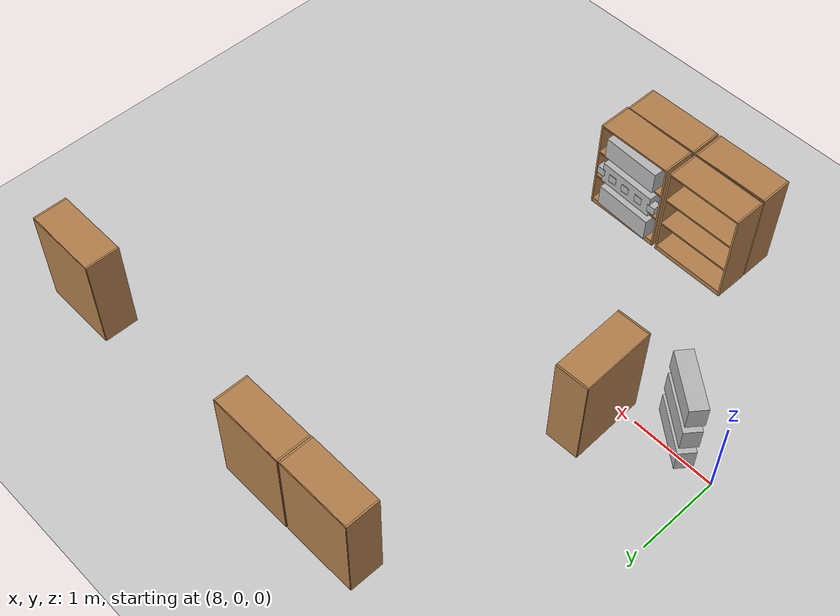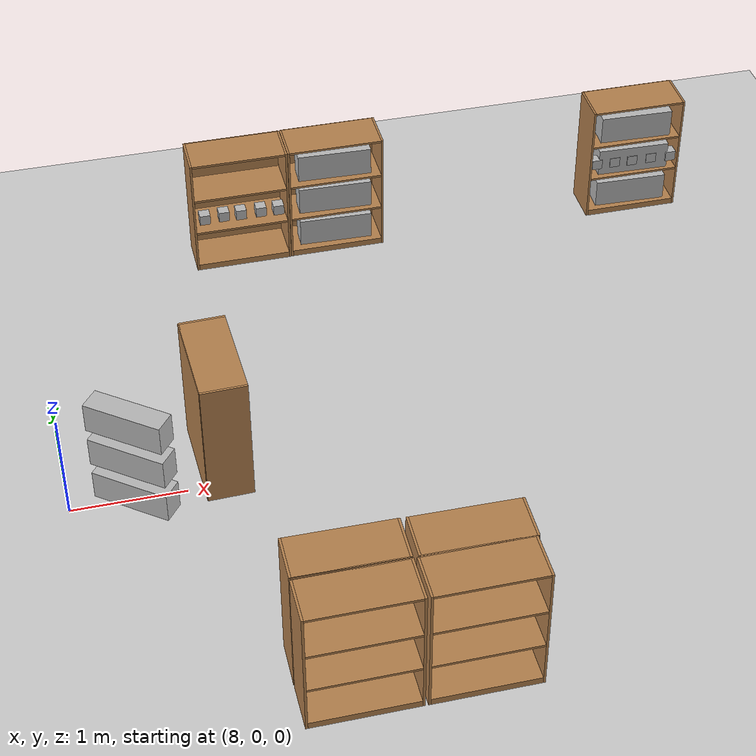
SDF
<sdf version="1.7">
 <world name="default">
  <model name="ground_plane">
   <static>1</static>
   <link name="link">
    <collision name="collision">
     <geometry><plane><normal>0 0 1</normal><size>100 100</size></plane></geometry>
     <surface><friction><ode><mu>100</mu><mu2>50</mu2></ode></friction></surface>
    </collision>
    <visual name="visual">
     <cast_shadows>0</cast_shadows>
     <geometry><plane><normal>0 0 1</normal><size>100 100</size></plane></geometry>
     <material>
      <script><uri>file://media/materials/scripts/gazebo.material</uri><name>Gazebo/Grey</name></script>
     </material>
    </visual>
   </link>
  </model>
  <model name="bookshelf_clone_0">
   <static>1</static>
   <link name="link">
    <inertial><mass>1</mass></inertial>
    <collision name="back">
     <pose>0 0.005 0.6 0 -0 0</pose>
     <geometry><box><size>0.9 0.01 1.2</size></box></geometry>
    </collision>
    <visual name="visual1">
     <pose>0 0.005 0.6 0 -0 0</pose>
     <geometry><box><size>0.9 0.01 1.2</size></box></geometry>
     <material>
      <script><uri>file://media/materials/scripts/gazebo.material</uri><name>Gazebo/Wood</name></script>
     </material>
    </visual>
    <collision name="left_side">
     <pose>0.45 -0.195 0.6 0 -0 0</pose>
     <geometry><box><size>0.02 0.4 1.2</size></box></geometry>
    </collision>
    <visual name="visual2">
     <pose>0.45 -0.195 0.6 0 -0 0</pose>
     <geometry><box><size>0.02 0.4 1.2</size></box></geometry>
     <material>
      <script><uri>file://media/materials/scripts/gazebo.material</uri><name>Gazebo/Wood</name></script>
     </material>
    </visual>
    <collision name="right_side">
     <pose>-0.45 -0.195 0.6 0 -0 0</pose>
     <geometry><box><size>0.02 0.4 1.2</size></box></geometry>
    </collision>
    <visual name="visual3">
     <pose>-0.45 -0.195 0.6 0 -0 0</pose>
     <geometry><box><size>0.02 0.4 1.2</size></box></geometry>
     <material>
      <script><uri>file://media/materials/scripts/gazebo.material</uri><name>Gazebo/Wood</name></script>
     </material>
    </visual>
    <collision name="bottom">
     <pose>0 -0.195 0.03 0 -0 0</pose>
     <geometry><box><size>0.88 0.4 0.06</size></box></geometry>
    </collision>
    <visual name="visual4">
     <pose>0 -0.195 0.03 0 -0 0</pose>
     <geometry><box><size>0.88 0.4 0.06</size></box></geometry>
     <material>
      <script><uri>file://media/materials/scripts/gazebo.material</uri><name>Gazebo/Wood</name></script>
     </material>
    </visual>
    <collision name="top">
     <pose>0 -0.195 1.19 0 -0 0</pose>
     <geometry><box><size>0.88 0.4 0.02</size></box></geometry>
    </collision>
    <visual name="visual5">
     <pose>0 -0.195 1.19 0 -0 0</pose>
     <geometry><box><size>0.88 0.4 0.02</size></box></geometry>
     <material>
      <script><uri>file://media/materials/scripts/gazebo.material</uri><name>Gazebo/Wood</name></script>
     </material>
    </visual>
    <collision name="low_shelf">
     <pose>0 -0.195 0.43 0 -0 0</pose>
     <geometry><box><size>0.88 0.4 0.02</size></box></geometry>
    </collision>
    <visual name="visual6">
     <pose>0 -0.195 0.43 0 -0 0</pose>
     <geometry><box><size>0.88 0.4 0.02</size></box></geometry>
     <material>
      <script><uri>file://media/materials/scripts/gazebo.material</uri><name>Gazebo/Wood</name></script>
     </material>
    </visual>
    <collision name="high_shelf">
     <pose>0 -0.195 0.8 0 -0 0</pose>
     <geometry><box><size>0.88 0.4 0.02</size></box></geometry>
    </collision>
    <visual name="visual7">
     <pose>0 -0.195 0.8 0 -0 0</pose>
     <geometry><box><size>0.88 0.4 0.02</size></box></geometry>
     <material>
      <script><uri>file://media/materials/scripts/gazebo.material</uri><name>Gazebo/Wood</name></script>
     </material>
    </visual>
   </link>
   <pose>10.0302 3.32854 0.012624 0 -0 0</pose>
  </model>
  <model name="bookshelf_clone_0_clone">
   <static>1</static>
   <link name="link">
    <inertial><mass>1</mass></inertial>
    <collision name="back">
     <pose>0 0.005 0.6 0 -0 0</pose>
     <geometry><box><size>0.9 0.01 1.2</size></box></geometry>
    </collision>
    <visual name="visual1">
     <pose>0 0.005 0.6 0 -0 0</pose>
     <geometry><box><size>0.9 0.01 1.2</size></box></geometry>
     <material>
      <script><uri>file://media/materials/scripts/gazebo.material</uri><name>Gazebo/Wood</name></script>
     </material>
    </visual>
    <collision name="left_side">
     <pose>0.45 -0.195 0.6 0 -0 0</pose>
     <geometry><box><size>0.02 0.4 1.2</size></box></geometry>
    </collision>
    <visual name="visual2">
     <pose>0.45 -0.195 0.6 0 -0 0</pose>
     <geometry><box><size>0.02 0.4 1.2</size></box></geometry>
     <material>
      <script><uri>file://media/materials/scripts/gazebo.material</uri><name>Gazebo/Wood</name></script>
     </material>
    </visual>
    <collision name="right_side">
     <pose>-0.45 -0.195 0.6 0 -0 0</pose>
     <geometry><box><size>0.02 0.4 1.2</size></box></geometry>
    </collision>
    <visual name="visual3">
     <pose>-0.45 -0.195 0.6 0 -0 0</pose>
     <geometry><box><size>0.02 0.4 1.2</size></box></geometry>
     <material>
      <script><uri>file://media/materials/scripts/gazebo.material</uri><name>Gazebo/Wood</name></script>
     </material>
    </visual>
    <collision name="bottom">
     <pose>0 -0.195 0.03 0 -0 0</pose>
     <geometry><box><size>0.88 0.4 0.06</size></box></geometry>
    </collision>
    <visual name="visual4">
     <pose>0 -0.195 0.03 0 -0 0</pose>
     <geometry><box><size>0.88 0.4 0.06</size></box></geometry>
     <material>
      <script><uri>file://media/materials/scripts/gazebo.material</uri><name>Gazebo/Wood</name></script>
     </material>
    </visual>
    <collision name="top">
     <pose>0 -0.195 1.19 0 -0 0</pose>
     <geometry><box><size>0.88 0.4 0.02</size></box></geometry>
    </collision>
    <visual name="visual5">
     <pose>0 -0.195 1.19 0 -0 0</pose>
     <geometry><box><size>0.88 0.4 0.02</size></box></geometry>
     <material>
      <script><uri>file://media/materials/scripts/gazebo.material</uri><name>Gazebo/Wood</name></script>
     </material>
    </visual>
    <collision name="low_shelf">
     <pose>0 -0.195 0.43 0 -0 0</pose>
     <geometry><box><size>0.88 0.4 0.02</size></box></geometry>
    </collision>
    <visual name="visual6">
     <pose>0 -0.195 0.43 0 -0 0</pose>
     <geometry><box><size>0.88 0.4 0.02</size></box></geometry>
     <material>
      <script><uri>file://media/materials/scripts/gazebo.material</uri><name>Gazebo/Wood</name></script>
     </material>
    </visual>
    <collision name="high_shelf">
     <pose>0 -0.195 0.8 0 -0 0</pose>
     <geometry><box><size>0.88 0.4 0.02</size></box></geometry>
    </collision>
    <visual name="visual7">
     <pose>0 -0.195 0.8 0 -0 0</pose>
     <geometry><box><size>0.88 0.4 0.02</size></box></geometry>
     <material>
      <script><uri>file://media/materials/scripts/gazebo.material</uri><name>Gazebo/Wood</name></script>
     </material>
    </visual>
   </link>
   <pose>10.9525 3.33337 0.012624 0 -0 0</pose>
  </model>
  <model name="bookshelf_clone_0_clone_0">
   <static>1</static>
   <link name="link">
    <inertial><mass>1</mass></inertial>
    <collision name="back">
     <pose>0 0.005 0.6 0 -0 0</pose>
     <geometry><box><size>0.9 0.01 1.2</size></box></geometry>
    </collision>
    <visual name="visual1">
     <pose>0 0.005 0.6 0 -0 0</pose>
     <geometry><box><size>0.9 0.01 1.2</size></box></geometry>
     <material>
      <script><uri>file://media/materials/scripts/gazebo.material</uri><name>Gazebo/Wood</name></script>
     </material>
    </visual>
    <collision name="left_side">
     <pose>0.45 -0.195 0.6 0 -0 0</pose>
     <geometry><box><size>0.02 0.4 1.2</size></box></geometry>
    </collision>
    <visual name="visual2">
     <pose>0.45 -0.195 0.6 0 -0 0</pose>
     <geometry><box><size>0.02 0.4 1.2</size></box></geometry>
     <material>
      <script><uri>file://media/materials/scripts/gazebo.material</uri><name>Gazebo/Wood</name></script>
     </material>
    </visual>
    <collision name="right_side">
     <pose>-0.45 -0.195 0.6 0 -0 0</pose>
     <geometry><box><size>0.02 0.4 1.2</size></box></geometry>
    </collision>
    <visual name="visual3">
     <pose>-0.45 -0.195 0.6 0 -0 0</pose>
     <geometry><box><size>0.02 0.4 1.2</size></box></geometry>
     <material>
      <script><uri>file://media/materials/scripts/gazebo.material</uri><name>Gazebo/Wood</name></script>
     </material>
    </visual>
    <collision name="bottom">
     <pose>0 -0.195 0.03 0 -0 0</pose>
     <geometry><box><size>0.88 0.4 0.06</size></box></geometry>
    </collision>
    <visual name="visual4">
     <pose>0 -0.195 0.03 0 -0 0</pose>
     <geometry><box><size>0.88 0.4 0.06</size></box></geometry>
     <material>
      <script><uri>file://media/materials/scripts/gazebo.material</uri><name>Gazebo/Wood</name></script>
     </material>
    </visual>
    <collision name="top">
     <pose>0 -0.195 1.19 0 -0 0</pose>
     <geometry><box><size>0.88 0.4 0.02</size></box></geometry>
    </collision>
    <visual name="visual5">
     <pose>0 -0.195 1.19 0 -0 0</pose>
     <geometry><box><size>0.88 0.4 0.02</size></box></geometry>
     <material>
      <script><uri>file://media/materials/scripts/gazebo.material</uri><name>Gazebo/Wood</name></script>
     </material>
    </visual>
    <collision name="low_shelf">
     <pose>0 -0.195 0.43 0 -0 0</pose>
     <geometry><box><size>0.88 0.4 0.02</size></box></geometry>
    </collision>
    <visual name="visual6">
     <pose>0 -0.195 0.43 0 -0 0</pose>
     <geometry><box><size>0.88 0.4 0.02</size></box></geometry>
     <material>
      <script><uri>file://media/materials/scripts/gazebo.material</uri><name>Gazebo/Wood</name></script>
     </material>
    </visual>
    <collision name="high_shelf">
     <pose>0 -0.195 0.8 0 -0 0</pose>
     <geometry><box><size>0.88 0.4 0.02</size></box></geometry>
    </collision>
    <visual name="visual7">
     <pose>0 -0.195 0.8 0 -0 0</pose>
     <geometry><box><size>0.88 0.4 0.02</size></box></geometry>
     <material>
      <script><uri>file://media/materials/scripts/gazebo.material</uri><name>Gazebo/Wood</name></script>
     </material>
    </visual>
   </link>
   <pose>13.9438 3.28168 0.012624 0 -0 0</pose>
  </model>
  <model name="bookshelf_clone_0_clone_1">
   <static>1</static>
   <link name="link">
    <inertial><mass>1</mass></inertial>
    <collision name="back">
     <pose>0 0.005 0.6 0 -0 0</pose>
     <geometry><box><size>0.9 0.01 1.2</size></box></geometry>
    </collision>
    <visual name="visual1">
     <pose>0 0.005 0.6 0 -0 0</pose>
     <geometry><box><size>0.9 0.01 1.2</size></box></geometry>
     <material>
      <script><uri>file://media/materials/scripts/gazebo.material</uri><name>Gazebo/Wood</name></script>
     </material>
    </visual>
    <collision name="left_side">
     <pose>0.45 -0.195 0.6 0 -0 0</pose>
     <geometry><box><size>0.02 0.4 1.2</size></box></geometry>
    </collision>
    <visual name="visual2">
     <pose>0.45 -0.195 0.6 0 -0 0</pose>
     <geometry><box><size>0.02 0.4 1.2</size></box></geometry>
     <material>
      <script><uri>file://media/materials/scripts/gazebo.material</uri><name>Gazebo/Wood</name></script>
     </material>
    </visual>
    <collision name="right_side">
     <pose>-0.45 -0.195 0.6 0 -0 0</pose>
     <geometry><box><size>0.02 0.4 1.2</size></box></geometry>
    </collision>
    <visual name="visual3">
     <pose>-0.45 -0.195 0.6 0 -0 0</pose>
     <geometry><box><size>0.02 0.4 1.2</size></box></geometry>
     <material>
      <script><uri>file://media/materials/scripts/gazebo.material</uri><name>Gazebo/Wood</name></script>
     </material>
    </visual>
    <collision name="bottom">
     <pose>0 -0.195 0.03 0 -0 0</pose>
     <geometry><box><size>0.88 0.4 0.06</size></box></geometry>
    </collision>
    <visual name="visual4">
     <pose>0 -0.195 0.03 0 -0 0</pose>
     <geometry><box><size>0.88 0.4 0.06</size></box></geometry>
     <material>
      <script><uri>file://media/materials/scripts/gazebo.material</uri><name>Gazebo/Wood</name></script>
     </material>
    </visual>
    <collision name="top">
     <pose>0 -0.195 1.19 0 -0 0</pose>
     <geometry><box><size>0.88 0.4 0.02</size></box></geometry>
    </collision>
    <visual name="visual5">
     <pose>0 -0.195 1.19 0 -0 0</pose>
     <geometry><box><size>0.88 0.4 0.02</size></box></geometry>
     <material>
      <script><uri>file://media/materials/scripts/gazebo.material</uri><name>Gazebo/Wood</name></script>
     </material>
    </visual>
    <collision name="low_shelf">
     <pose>0 -0.195 0.43 0 -0 0</pose>
     <geometry><box><size>0.88 0.4 0.02</size></box></geometry>
    </collision>
    <visual name="visual6">
     <pose>0 -0.195 0.43 0 -0 0</pose>
     <geometry><box><size>0.88 0.4 0.02</size></box></geometry>
     <material>
      <script><uri>file://media/materials/scripts/gazebo.material</uri><name>Gazebo/Wood</name></script>
     </material>
    </visual>
    <collision name="high_shelf">
     <pose>0 -0.195 0.8 0 -0 0</pose>
     <geometry><box><size>0.88 0.4 0.02</size></box></geometry>
    </collision>
    <visual name="visual7">
     <pose>0 -0.195 0.8 0 -0 0</pose>
     <geometry><box><size>0.88 0.4 0.02</size></box></geometry>
     <material>
      <script><uri>file://media/materials/scripts/gazebo.material</uri><name>Gazebo/Wood</name></script>
     </material>
    </visual>
   </link>
   <pose>9.90189 -2.29292 0.012624 0 -0 0</pose>
  </model>
  <model name="bookshelf_clone_0_clone_2">
   <static>1</static>
   <link name="link">
    <inertial><mass>1</mass></inertial>
    <collision name="back">
     <pose>0 0.005 0.6 0 -0 0</pose>
     <geometry><box><size>0.9 0.01 1.2</size></box></geometry>
    </collision>
    <visual name="visual1">
     <pose>0 0.005 0.6 0 -0 0</pose>
     <geometry><box><size>0.9 0.01 1.2</size></box></geometry>
     <material>
      <script><uri>file://media/materials/scripts/gazebo.material</uri><name>Gazebo/Wood</name></script>
     </material>
    </visual>
    <collision name="left_side">
     <pose>0.45 -0.195 0.6 0 -0 0</pose>
     <geometry><box><size>0.02 0.4 1.2</size></box></geometry>
    </collision>
    <visual name="visual2">
     <pose>0.45 -0.195 0.6 0 -0 0</pose>
     <geometry><box><size>0.02 0.4 1.2</size></box></geometry>
     <material>
      <script><uri>file://media/materials/scripts/gazebo.material</uri><name>Gazebo/Wood</name></script>
     </material>
    </visual>
    <collision name="right_side">
     <pose>-0.45 -0.195 0.6 0 -0 0</pose>
     <geometry><box><size>0.02 0.4 1.2</size></box></geometry>
    </collision>
    <visual name="visual3">
     <pose>-0.45 -0.195 0.6 0 -0 0</pose>
     <geometry><box><size>0.02 0.4 1.2</size></box></geometry>
     <material>
      <script><uri>file://media/materials/scripts/gazebo.material</uri><name>Gazebo/Wood</name></script>
     </material>
    </visual>
    <collision name="bottom">
     <pose>0 -0.195 0.03 0 -0 0</pose>
     <geometry><box><size>0.88 0.4 0.06</size></box></geometry>
    </collision>
    <visual name="visual4">
     <pose>0 -0.195 0.03 0 -0 0</pose>
     <geometry><box><size>0.88 0.4 0.06</size></box></geometry>
     <material>
      <script><uri>file://media/materials/scripts/gazebo.material</uri><name>Gazebo/Wood</name></script>
     </material>
    </visual>
    <collision name="top">
     <pose>0 -0.195 1.19 0 -0 0</pose>
     <geometry><box><size>0.88 0.4 0.02</size></box></geometry>
    </collision>
    <visual name="visual5">
     <pose>0 -0.195 1.19 0 -0 0</pose>
     <geometry><box><size>0.88 0.4 0.02</size></box></geometry>
     <material>
      <script><uri>file://media/materials/scripts/gazebo.material</uri><name>Gazebo/Wood</name></script>
     </material>
    </visual>
    <collision name="low_shelf">
     <pose>0 -0.195 0.43 0 -0 0</pose>
     <geometry><box><size>0.88 0.4 0.02</size></box></geometry>
    </collision>
    <visual name="visual6">
     <pose>0 -0.195 0.43 0 -0 0</pose>
     <geometry><box><size>0.88 0.4 0.02</size></box></geometry>
     <material>
      <script><uri>file://media/materials/scripts/gazebo.material</uri><name>Gazebo/Wood</name></script>
     </material>
    </visual>
    <collision name="high_shelf">
     <pose>0 -0.195 0.8 0 -0 0</pose>
     <geometry><box><size>0.88 0.4 0.02</size></box></geometry>
    </collision>
    <visual name="visual7">
     <pose>0 -0.195 0.8 0 -0 0</pose>
     <geometry><box><size>0.88 0.4 0.02</size></box></geometry>
     <material>
      <script><uri>file://media/materials/scripts/gazebo.material</uri><name>Gazebo/Wood</name></script>
     </material>
    </visual>
   </link>
   <pose>10.845 -2.29386 0.012624 0 -0 0</pose>
  </model>
  <model name="bookshelf_clone_clone_clone_1_clone">
   <static>1</static>
   <link name="link">
    <inertial><mass>1</mass></inertial>
    <collision name="back">
     <pose>0 0.005 0.6 0 -0 0</pose>
     <geometry><box><size>0.9 0.01 1.2</size></box></geometry>
    </collision>
    <visual name="visual1">
     <pose>0 0.005 0.6 0 -0 0</pose>
     <geometry><box><size>0.9 0.01 1.2</size></box></geometry>
     <material>
      <script><uri>file://media/materials/scripts/gazebo.material</uri><name>Gazebo/Wood</name></script>
     </material>
    </visual>
    <collision name="left_side">
     <pose>0.45 -0.195 0.6 0 -0 0</pose>
     <geometry><box><size>0.02 0.4 1.2</size></box></geometry>
    </collision>
    <visual name="visual2">
     <pose>0.45 -0.195 0.6 0 -0 0</pose>
     <geometry><box><size>0.02 0.4 1.2</size></box></geometry>
     <material>
      <script><uri>file://media/materials/scripts/gazebo.material</uri><name>Gazebo/Wood</name></script>
     </material>
    </visual>
    <collision name="right_side">
     <pose>-0.45 -0.195 0.6 0 -0 0</pose>
     <geometry><box><size>0.02 0.4 1.2</size></box></geometry>
    </collision>
    <visual name="visual3">
     <pose>-0.45 -0.195 0.6 0 -0 0</pose>
     <geometry><box><size>0.02 0.4 1.2</size></box></geometry>
     <material>
      <script><uri>file://media/materials/scripts/gazebo.material</uri><name>Gazebo/Wood</name></script>
     </material>
    </visual>
    <collision name="bottom">
     <pose>0 -0.195 0.03 0 -0 0</pose>
     <geometry><box><size>0.88 0.4 0.06</size></box></geometry>
    </collision>
    <visual name="visual4">
     <pose>0 -0.195 0.03 0 -0 0</pose>
     <geometry><box><size>0.88 0.4 0.06</size></box></geometry>
     <material>
      <script><uri>file://media/materials/scripts/gazebo.material</uri><name>Gazebo/Wood</name></script>
     </material>
    </visual>
    <collision name="top">
     <pose>0 -0.195 1.19 0 -0 0</pose>
     <geometry><box><size>0.88 0.4 0.02</size></box></geometry>
    </collision>
    <visual name="visual5">
     <pose>0 -0.195 1.19 0 -0 0</pose>
     <geometry><box><size>0.88 0.4 0.02</size></box></geometry>
     <material>
      <script><uri>file://media/materials/scripts/gazebo.material</uri><name>Gazebo/Wood</name></script>
     </material>
    </visual>
    <collision name="low_shelf">
     <pose>0 -0.195 0.43 0 -0 0</pose>
     <geometry><box><size>0.88 0.4 0.02</size></box></geometry>
    </collision>
    <visual name="visual6">
     <pose>0 -0.195 0.43 0 -0 0</pose>
     <geometry><box><size>0.88 0.4 0.02</size></box></geometry>
     <material>
      <script><uri>file://media/materials/scripts/gazebo.material</uri><name>Gazebo/Wood</name></script>
     </material>
    </visual>
    <collision name="high_shelf">
     <pose>0 -0.195 0.8 0 -0 0</pose>
     <geometry><box><size>0.88 0.4 0.02</size></box></geometry>
    </collision>
    <visual name="visual7">
     <pose>0 -0.195 0.8 0 -0 0</pose>
     <geometry><box><size>0.88 0.4 0.02</size></box></geometry>
     <material>
      <script><uri>file://media/materials/scripts/gazebo.material</uri><name>Gazebo/Wood</name></script>
     </material>
    </visual>
   </link>
   <pose>10.8611 -2.27659 0.012624 0 -0 3.13078</pose>
  </model>
  <model name="bookshelf_clone_clone_clone_1_clone_0">
   <static>1</static>
   <link name="link">
    <inertial><mass>1</mass></inertial>
    <collision name="back">
     <pose>0 0.005 0.6 0 -0 0</pose>
     <geometry><box><size>0.9 0.01 1.2</size></box></geometry>
    </collision>
    <visual name="visual1">
     <pose>0 0.005 0.6 0 -0 0</pose>
     <geometry><box><size>0.9 0.01 1.2</size></box></geometry>
     <material>
      <script><uri>file://media/materials/scripts/gazebo.material</uri><name>Gazebo/Wood</name></script>
     </material>
    </visual>
    <collision name="left_side">
     <pose>0.45 -0.195 0.6 0 -0 0</pose>
     <geometry><box><size>0.02 0.4 1.2</size></box></geometry>
    </collision>
    <visual name="visual2">
     <pose>0.45 -0.195 0.6 0 -0 0</pose>
     <geometry><box><size>0.02 0.4 1.2</size></box></geometry>
     <material>
      <script><uri>file://media/materials/scripts/gazebo.material</uri><name>Gazebo/Wood</name></script>
     </material>
    </visual>
    <collision name="right_side">
     <pose>-0.45 -0.195 0.6 0 -0 0</pose>
     <geometry><box><size>0.02 0.4 1.2</size></box></geometry>
    </collision>
    <visual name="visual3">
     <pose>-0.45 -0.195 0.6 0 -0 0</pose>
     <geometry><box><size>0.02 0.4 1.2</size></box></geometry>
     <material>
      <script><uri>file://media/materials/scripts/gazebo.material</uri><name>Gazebo/Wood</name></script>
     </material>
    </visual>
    <collision name="bottom">
     <pose>0 -0.195 0.03 0 -0 0</pose>
     <geometry><box><size>0.88 0.4 0.06</size></box></geometry>
    </collision>
    <visual name="visual4">
     <pose>0 -0.195 0.03 0 -0 0</pose>
     <geometry><box><size>0.88 0.4 0.06</size></box></geometry>
     <material>
      <script><uri>file://media/materials/scripts/gazebo.material</uri><name>Gazebo/Wood</name></script>
     </material>
    </visual>
    <collision name="top">
     <pose>0 -0.195 1.19 0 -0 0</pose>
     <geometry><box><size>0.88 0.4 0.02</size></box></geometry>
    </collision>
    <visual name="visual5">
     <pose>0 -0.195 1.19 0 -0 0</pose>
     <geometry><box><size>0.88 0.4 0.02</size></box></geometry>
     <material>
      <script><uri>file://media/materials/scripts/gazebo.material</uri><name>Gazebo/Wood</name></script>
     </material>
    </visual>
    <collision name="low_shelf">
     <pose>0 -0.195 0.43 0 -0 0</pose>
     <geometry><box><size>0.88 0.4 0.02</size></box></geometry>
    </collision>
    <visual name="visual6">
     <pose>0 -0.195 0.43 0 -0 0</pose>
     <geometry><box><size>0.88 0.4 0.02</size></box></geometry>
     <material>
      <script><uri>file://media/materials/scripts/gazebo.material</uri><name>Gazebo/Wood</name></script>
     </material>
    </visual>
    <collision name="high_shelf">
     <pose>0 -0.195 0.8 0 -0 0</pose>
     <geometry><box><size>0.88 0.4 0.02</size></box></geometry>
    </collision>
    <visual name="visual7">
     <pose>0 -0.195 0.8 0 -0 0</pose>
     <geometry><box><size>0.88 0.4 0.02</size></box></geometry>
     <material>
      <script><uri>file://media/materials/scripts/gazebo.material</uri><name>Gazebo/Wood</name></script>
     </material>
    </visual>
   </link>
   <pose>9.90031 -2.26284 0.012624 0 -0 3.13078</pose>
  </model>
  <model name="bookshelf_clone_clone_clone_1_clone_0_clone_2_clone_clone">
   <static>1</static>
   <link name="link">
    <inertial><mass>1</mass></inertial>
    <collision name="back">
     <pose>0 0.005 0.6 0 -0 0</pose>
     <geometry><box><size>0.9 0.01 1.2</size></box></geometry>
    </collision>
    <visual name="visual1">
     <pose>0 0.005 0.6 0 -0 0</pose>
     <geometry><box><size>0.9 0.01 1.2</size></box></geometry>
     <material>
      <script><uri>file://media/materials/scripts/gazebo.material</uri><name>Gazebo/Wood</name></script>
     </material>
    </visual>
    <collision name="left_side">
     <pose>0.45 -0.195 0.6 0 -0 0</pose>
     <geometry><box><size>0.02 0.4 1.2</size></box></geometry>
    </collision>
    <visual name="visual2">
     <pose>0.45 -0.195 0.6 0 -0 0</pose>
     <geometry><box><size>0.02 0.4 1.2</size></box></geometry>
     <material>
      <script><uri>file://media/materials/scripts/gazebo.material</uri><name>Gazebo/Wood</name></script>
     </material>
    </visual>
    <collision name="right_side">
     <pose>-0.45 -0.195 0.6 0 -0 0</pose>
     <geometry><box><size>0.02 0.4 1.2</size></box></geometry>
    </collision>
    <visual name="visual3">
     <pose>-0.45 -0.195 0.6 0 -0 0</pose>
     <geometry><box><size>0.02 0.4 1.2</size></box></geometry>
     <material>
      <script><uri>file://media/materials/scripts/gazebo.material</uri><name>Gazebo/Wood</name></script>
     </material>
    </visual>
    <collision name="bottom">
     <pose>0 -0.195 0.03 0 -0 0</pose>
     <geometry><box><size>0.88 0.4 0.06</size></box></geometry>
    </collision>
    <visual name="visual4">
     <pose>0 -0.195 0.03 0 -0 0</pose>
     <geometry><box><size>0.88 0.4 0.06</size></box></geometry>
     <material>
      <script><uri>file://media/materials/scripts/gazebo.material</uri><name>Gazebo/Wood</name></script>
     </material>
    </visual>
    <collision name="top">
     <pose>0 -0.195 1.19 0 -0 0</pose>
     <geometry><box><size>0.88 0.4 0.02</size></box></geometry>
    </collision>
    <visual name="visual5">
     <pose>0 -0.195 1.19 0 -0 0</pose>
     <geometry><box><size>0.88 0.4 0.02</size></box></geometry>
     <material>
      <script><uri>file://media/materials/scripts/gazebo.material</uri><name>Gazebo/Wood</name></script>
     </material>
    </visual>
    <collision name="low_shelf">
     <pose>0 -0.195 0.43 0 -0 0</pose>
     <geometry><box><size>0.88 0.4 0.02</size></box></geometry>
    </collision>
    <visual name="visual6">
     <pose>0 -0.195 0.43 0 -0 0</pose>
     <geometry><box><size>0.88 0.4 0.02</size></box></geometry>
     <material>
      <script><uri>file://media/materials/scripts/gazebo.material</uri><name>Gazebo/Wood</name></script>
     </material>
    </visual>
    <collision name="high_shelf">
     <pose>0 -0.195 0.8 0 -0 0</pose>
     <geometry><box><size>0.88 0.4 0.02</size></box></geometry>
    </collision>
    <visual name="visual7">
     <pose>0 -0.195 0.8 0 -0 0</pose>
     <geometry><box><size>0.88 0.4 0.02</size></box></geometry>
     <material>
      <script><uri>file://media/materials/scripts/gazebo.material</uri><name>Gazebo/Wood</name></script>
     </material>
    </visual>
   </link>
   <pose>9.13447 0.285063 0.012624 0 -0 1.60042</pose>
  </model>
  <model name="book1.xacro_clone_3">
   <link name="base_footprint">
    <inertial>
     <pose>1 1 1.5 0 -0 0</pose>
     <mass>6</mass>
     <inertia><ixx>0.7503</ixx><ixy>0</ixy><ixz>0</ixz><iyy>0.7503</iyy><iyz>0</iyz><izz>0.003</izz></inertia>
    </inertial>
    <collision name="base_footprint_fixed_joint_lump__base_link_collision">
     <pose>1 1 1 0 -0 0</pose>
     <geometry><box><size>0.7 0.2 0.27</size></box></geometry>
    </collision>
    <collision name="base_footprint_fixed_joint_lump__book_link_2_collision_1">
     <pose>1 1 1.375 0 -0 0</pose>
     <geometry><box><size>0.7 0.2 0.27</size></box></geometry>
    </collision>
    <collision name="base_footprint_fixed_joint_lump__book_link_3_collision_2">
     <pose>1 1 1.75 0 -0 0</pose>
     <geometry><box><size>0.7 0.2 0.27</size></box></geometry>
    </collision>
    <visual name="base_footprint_fixed_joint_lump__base_link_visual">
     <pose>1 1 1 0 -0 0</pose>
     <geometry><box><size>0.7 0.2 0.27</size></box></geometry>
    </visual>
    <visual name="base_footprint_fixed_joint_lump__book_link_2_visual_1">
     <pose>1 1 1.375 0 -0 0</pose>
     <geometry><box><size>0.7 0.2 0.27</size></box></geometry>
    </visual>
    <visual name="base_footprint_fixed_joint_lump__book_link_3_visual_2">
     <pose>1 1 1.75 0 -0 0</pose>
     <geometry><box><size>0.7 0.2 0.27</size></box></geometry>
    </visual>
   </link>
   <frame name="book_joint_2" attached_to="base_link"><pose>0 0 0.375 0 -0 0</pose></frame>
   <frame name="book_link_2" attached_to="book_joint_2"/>
   <frame name="book_joint_3" attached_to="base_link"><pose>0 0 0.75 0 -0 0</pose></frame>
   <frame name="book_link_3" attached_to="book_joint_3"/>
   <frame name="base_joint" attached_to="base_footprint"><pose>1 1 1 0 -0 0</pose></frame>
   <frame name="base_link" attached_to="base_joint"/>
   <pose>9.92653 2.13433 -0.787376 -0 -0 -0.03072</pose>
  </model>
  <model name="book1.xacro_clone_4">
   <link name="base_footprint">
    <inertial>
     <pose>1 1 1.5 0 -0 0</pose>
     <mass>6</mass>
     <inertia><ixx>0.7503</ixx><ixy>0</ixy><ixz>0</ixz><iyy>0.7503</iyy><iyz>0</iyz><izz>0.003</izz></inertia>
    </inertial>
    <collision name="base_footprint_fixed_joint_lump__base_link_collision">
     <pose>1 1 1 0 -0 0</pose>
     <geometry><box><size>0.7 0.2 0.27</size></box></geometry>
    </collision>
    <collision name="base_footprint_fixed_joint_lump__book_link_2_collision_1">
     <pose>1 1 1.375 0 -0 0</pose>
     <geometry><box><size>0.7 0.2 0.27</size></box></geometry>
    </collision>
    <collision name="base_footprint_fixed_joint_lump__book_link_3_collision_2">
     <pose>1 1 1.75 0 -0 0</pose>
     <geometry><box><size>0.7 0.2 0.27</size></box></geometry>
    </collision>
    <visual name="base_footprint_fixed_joint_lump__base_link_visual">
     <pose>1 1 1 0 -0 0</pose>
     <geometry><box><size>0.7 0.2 0.27</size></box></geometry>
    </visual>
    <visual name="base_footprint_fixed_joint_lump__book_link_2_visual_1">
     <pose>1 1 1.375 0 -0 0</pose>
     <geometry><box><size>0.7 0.2 0.27</size></box></geometry>
    </visual>
    <visual name="base_footprint_fixed_joint_lump__book_link_3_visual_2">
     <pose>1 1 1.75 0 -0 0</pose>
     <geometry><box><size>0.7 0.2 0.27</size></box></geometry>
    </visual>
   </link>
   <frame name="book_joint_2" attached_to="base_link"><pose>0 0 0.375 0 -0 0</pose></frame>
   <frame name="book_link_2" attached_to="book_joint_2"/>
   <frame name="book_joint_3" attached_to="base_link"><pose>0 0 0.75 0 -0 0</pose></frame>
   <frame name="book_link_3" attached_to="book_joint_3"/>
   <frame name="base_joint" attached_to="base_footprint"><pose>1 1 1 0 -0 0</pose></frame>
   <frame name="base_link" attached_to="base_joint"/>
   <pose>12.9186 2.0652 -0.787376 0 0 -0.030721</pose>
  </model>
  <model name="book1.xacro_clone_5">
   <link name="base_footprint">
    <inertial>
     <pose>1 1 1.5 0 -0 0</pose>
     <mass>6</mass>
     <inertia><ixx>0.7503</ixx><ixy>0</ixy><ixz>0</ixz><iyy>0.7503</iyy><iyz>0</iyz><izz>0.003</izz></inertia>
    </inertial>
    <collision name="base_footprint_fixed_joint_lump__base_link_collision">
     <pose>1 1 1 0 -0 0</pose>
     <geometry><box><size>0.7 0.2 0.27</size></box></geometry>
    </collision>
    <collision name="base_footprint_fixed_joint_lump__book_link_2_collision_1">
     <pose>1 1 1.375 0 -0 0</pose>
     <geometry><box><size>0.7 0.2 0.27</size></box></geometry>
    </collision>
    <collision name="base_footprint_fixed_joint_lump__book_link_3_collision_2">
     <pose>1 1 1.75 0 -0 0</pose>
     <geometry><box><size>0.7 0.2 0.27</size></box></geometry>
    </collision>
    <visual name="base_footprint_fixed_joint_lump__base_link_visual">
     <pose>1 1 1 0 -0 0</pose>
     <geometry><box><size>0.7 0.2 0.27</size></box></geometry>
    </visual>
    <visual name="base_footprint_fixed_joint_lump__book_link_2_visual_1">
     <pose>1 1 1.375 0 -0 0</pose>
     <geometry><box><size>0.7 0.2 0.27</size></box></geometry>
    </visual>
    <visual name="base_footprint_fixed_joint_lump__book_link_3_visual_2">
     <pose>1 1 1.75 0 -0 0</pose>
     <geometry><box><size>0.7 0.2 0.27</size></box></geometry>
    </visual>
   </link>
   <frame name="book_joint_2" attached_to="base_link"><pose>0 0 0.375 0 -0 0</pose></frame>
   <frame name="book_link_2" attached_to="book_joint_2"/>
   <frame name="book_joint_3" attached_to="base_link"><pose>0 0 0.75 0 -0 0</pose></frame>
   <frame name="book_link_3" attached_to="book_joint_3"/>
   <frame name="base_joint" attached_to="base_footprint"><pose>1 1 1 0 -0 0</pose></frame>
   <frame name="base_link" attached_to="base_joint"/>
   <pose>9.80941 -2.90193 -0.787376 0 0 -0.048575</pose>
  </model>
  <model name="book1.xacro_clone_16_clone">
   <link name="base_footprint">
    <inertial>
     <pose>1 1 1.5 0 -0 0</pose>
     <mass>6</mass>
     <inertia><ixx>0.7503</ixx><ixy>0</ixy><ixz>0</ixz><iyy>0.7503</iyy><iyz>0</iyz><izz>0.003</izz></inertia>
    </inertial>
    <collision name="base_footprint_fixed_joint_lump__base_link_collision">
     <pose>1 1 1 0 -0 0</pose>
     <geometry><box><size>0.7 0.2 0.27</size></box></geometry>
    </collision>
    <collision name="base_footprint_fixed_joint_lump__book_link_2_collision_1">
     <pose>1 1 1.375 0 -0 0</pose>
     <geometry><box><size>0.7 0.2 0.27</size></box></geometry>
    </collision>
    <collision name="base_footprint_fixed_joint_lump__book_link_3_collision_2">
     <pose>1 1 1.75 0 -0 0</pose>
     <geometry><box><size>0.7 0.2 0.27</size></box></geometry>
    </collision>
    <visual name="base_footprint_fixed_joint_lump__base_link_visual">
     <pose>1 1 1 0 -0 0</pose>
     <geometry><box><size>0.7 0.2 0.27</size></box></geometry>
    </visual>
    <visual name="base_footprint_fixed_joint_lump__book_link_2_visual_1">
     <pose>1 1 1.375 0 -0 0</pose>
     <geometry><box><size>0.7 0.2 0.27</size></box></geometry>
    </visual>
    <visual name="base_footprint_fixed_joint_lump__book_link_3_visual_2">
     <pose>1 1 1.75 0 -0 0</pose>
     <geometry><box><size>0.7 0.2 0.27</size></box></geometry>
    </visual>
   </link>
   <frame name="book_joint_2" attached_to="base_link"><pose>0 0 0.375 0 -0 0</pose></frame>
   <frame name="book_link_2" attached_to="book_joint_2"/>
   <frame name="book_joint_3" attached_to="base_link"><pose>0 0 0.75 0 -0 0</pose></frame>
   <frame name="book_link_3" attached_to="book_joint_3"/>
   <frame name="base_joint" attached_to="base_footprint"><pose>1 1 1 0 -0 0</pose></frame>
   <frame name="base_link" attached_to="base_joint"/>
   <pose>10.3915 -0.726557 -0.787394 -0 -1.3e-05 1.55574</pose>
  </model>
  <model name="book1.xacro_clone_16_clone_clone_1_clone_0">
   <link name="base_footprint">
    <inertial>
     <pose>1 1 1.5 0 -0 0</pose>
     <mass>6</mass>
     <inertia><ixx>0.7503</ixx><ixy>0</ixy><ixz>0</ixz><iyy>0.7503</iyy><iyz>0</iyz><izz>0.003</izz></inertia>
    </inertial>
    <collision name="base_footprint_fixed_joint_lump__base_link_collision">
     <pose>1 1 1 0 -0 0</pose>
     <geometry><box><size>0.7 0.2 0.27</size></box></geometry>
    </collision>
    <collision name="base_footprint_fixed_joint_lump__book_link_2_collision_1">
     <pose>1 1 1.375 0 -0 0</pose>
     <geometry><box><size>0.7 0.2 0.27</size></box></geometry>
    </collision>
    <collision name="base_footprint_fixed_joint_lump__book_link_3_collision_2">
     <pose>1 1 1.75 0 -0 0</pose>
     <geometry><box><size>0.7 0.2 0.27</size></box></geometry>
    </collision>
    <visual name="base_footprint_fixed_joint_lump__base_link_visual">
     <pose>1 1 1 0 -0 0</pose>
     <geometry><box><size>0.7 0.2 0.27</size></box></geometry>
    </visual>
    <visual name="base_footprint_fixed_joint_lump__book_link_2_visual_1">
     <pose>1 1 1.375 0 -0 0</pose>
     <geometry><box><size>0.7 0.2 0.27</size></box></geometry>
    </visual>
    <visual name="base_footprint_fixed_joint_lump__book_link_3_visual_2">
     <pose>1 1 1.75 0 -0 0</pose>
     <geometry><box><size>0.7 0.2 0.27</size></box></geometry>
    </visual>
   </link>
   <frame name="book_joint_2" attached_to="base_link"><pose>0 0 0.375 0 -0 0</pose></frame>
   <frame name="book_link_2" attached_to="book_joint_2"/>
   <frame name="book_joint_3" attached_to="base_link"><pose>0 0 0.75 0 -0 0</pose></frame>
   <frame name="book_link_3" attached_to="book_joint_3"/>
   <frame name="base_joint" attached_to="base_footprint"><pose>1 1 1 0 -0 0</pose></frame>
   <frame name="base_link" attached_to="base_joint"/>
   <pose>9.96582 0.071218 -0.77078 0 1.2e-05 2.48249</pose>
  </model>
  <model name="A8_0">
   <static>1</static>
   <link name="link">
    <pose>0 0 0.58 1.57 -0 0</pose>
    <inertial>
     <mass>0.1</mass>
     <inertia><ixx>0.00058</ixx><ixy>0</ixy><ixz>0</ixz><iyy>0.00058</iyy><iyz>0</iyz><izz>0.00019</izz></inertia>
    </inertial>
    <collision name="collision"><geometry><box><size>0 0 0</size></box></geometry></collision>
    <visual name="visual">
     <geometry><box><size>0.1 0.1 0.1</size></box></geometry>
     <material>
      <script>
       <uri>model://A8/materials/scripts</uri>
       <uri>model://A8/materials/textures</uri>
       <name>A8/Diffuse</name>
      </script>
     </material>
    </visual>
   </link>
   <pose>9.68069 2.99726 -0 0 -0 0</pose>
  </model>
  <model name="A9_0">
   <static>1</static>
   <link name="link">
    <pose>0 0 0.58 1.57 -0 0</pose>
    <inertial>
     <mass>0.1</mass>
     <inertia><ixx>0.00058</ixx><ixy>0</ixy><ixz>0</ixz><iyy>0.00058</iyy><iyz>0</iyz><izz>0.00019</izz></inertia>
    </inertial>
    <collision name="collision"><geometry><box><size>0 0 0</size></box></geometry></collision>
    <visual name="visual">
     <geometry><box><size>0.1 0.1 0.1</size></box></geometry>
     <material>
      <script>
       <uri>model://A9/materials/scripts</uri>
       <uri>model://A9/materials/textures</uri>
       <name>A9/Diffuse</name>
      </script>
     </material>
    </visual>
   </link>
   <pose>10.389 2.99091 -0 0 -0 0</pose>
  </model>
  <model name="A12">
   <static>1</static>
   <link name="link">
    <pose>0 0 0.58 1.57 -0 0</pose>
    <inertial>
     <mass>0.1</mass>
     <inertia><ixx>0.00058</ixx><ixy>0</ixy><ixz>0</ixz><iyy>0.00058</iyy><iyz>0</iyz><izz>0.00019</izz></inertia>
    </inertial>
    <collision name="collision"><geometry><box><size>0 0 0</size></box></geometry></collision>
    <visual name="visual">
     <geometry><box><size>0.1 0.1 0.1</size></box></geometry>
     <material>
      <script>
       <uri>model://A12/materials/scripts</uri>
       <uri>model://A12/materials/textures</uri>
       <name>A12/Diffuse</name>
      </script>
     </material>
    </visual>
   </link>
   <pose>9.86445 3.00754 -0 0 -0 0</pose>
  </model>
  <model name="A13">
   <static>1</static>
   <link name="link">
    <pose>0 0 0.58 1.57 -0 0</pose>
    <inertial>
     <mass>0.1</mass>
     <inertia><ixx>0.00058</ixx><ixy>0</ixy><ixz>0</ixz><iyy>0.00058</iyy><iyz>0</iyz><izz>0.00019</izz></inertia>
    </inertial>
    <collision name="collision"><geometry><box><size>0 0 0</size></box></geometry></collision>
    <visual name="visual">
     <geometry><box><size>0.1 0.1 0.1</size></box></geometry>
     <material>
      <script>
       <uri>model://A13/materials/scripts</uri>
       <uri>model://A13/materials/textures</uri>
       <name>A13/Diffuse</name>
      </script>
     </material>
    </visual>
   </link>
   <pose>10.0281 2.99993 -0 0 -0 0</pose>
  </model>
  <model name="A14">
   <static>1</static>
   <link name="link">
    <pose>0 0 0.58 1.57 -0 0</pose>
    <inertial>
     <mass>0.1</mass>
     <inertia><ixx>0.00058</ixx><ixy>0</ixy><ixz>0</ixz><iyy>0.00058</iyy><iyz>0</iyz><izz>0.00019</izz></inertia>
    </inertial>
    <collision name="collision"><geometry><box><size>0 0 0</size></box></geometry></collision>
    <visual name="visual">
     <geometry><box><size>0.1 0.1 0.1</size></box></geometry>
     <material>
      <script>
       <uri>model://A14/materials/scripts</uri>
       <uri>model://A14/materials/textures</uri>
       <name>A14/Diffuse</name>
      </script>
     </material>
    </visual>
   </link>
   <pose>10.2205 2.99948 -0 0 -0 0</pose>
  </model>
  <model name="D10">
   <static>1</static>
   <link name="link">
    <pose>0 0 0.58 1.57 -0 0</pose>
    <inertial>
     <mass>0.1</mass>
     <inertia><ixx>0.00058</ixx><ixy>0</ixy><ixz>0</ixz><iyy>0.00058</iyy><iyz>0</iyz><izz>0.00019</izz></inertia>
    </inertial>
    <collision name="collision"><geometry><box><size>0 0 0</size></box></geometry></collision>
    <visual name="visual">
     <geometry><box><size>0.1 0.1 0.1</size></box></geometry>
     <material>
      <script>
       <uri>model://D10/materials/scripts</uri>
       <uri>model://D10/materials/textures</uri>
       <name>D10/Diffuse</name>
      </script>
     </material>
    </visual>
   </link>
   <pose>13.5746 2.9816 -0 0 -0 0</pose>
  </model>
  <model name="D11">
   <static>1</static>
   <link name="link">
    <pose>0 0 0.58 1.57 -0 0</pose>
    <inertial>
     <mass>0.1</mass>
     <inertia><ixx>0.00058</ixx><ixy>0</ixy><ixz>0</ixz><iyy>0.00058</iyy><iyz>0</iyz><izz>0.00019</izz></inertia>
    </inertial>
    <collision name="collision"><geometry><box><size>0 0 0</size></box></geometry></collision>
    <visual name="visual">
     <geometry><box><size>0.1 0.1 0.1</size></box></geometry>
     <material>
      <script>
       <uri>model://D11/materials/scripts</uri>
       <uri>model://D11/materials/textures</uri>
       <name>D11/Diffuse</name>
      </script>
     </material>
    </visual>
   </link>
   <pose>14.324 2.95623 -0 0 -0 0</pose>
  </model>
  <model name="C15">
   <static>1</static>
   <link name="link">
    <pose>0 0 0.58 1.57 -0 0</pose>
    <inertial>
     <mass>0.1</mass>
     <inertia><ixx>0.00058</ixx><ixy>0</ixy><ixz>0</ixz><iyy>0.00058</iyy><iyz>0</iyz><izz>0.00019</izz></inertia>
    </inertial>
    <collision name="collision"><geometry><box><size>0 0 0</size></box></geometry></collision>
    <visual name="visual">
     <geometry><box><size>0.1 0.1 0.1</size></box></geometry>
     <material>
      <script>
       <uri>model://C15/materials/scripts</uri>
       <uri>model://C15/materials/textures</uri>
       <name>C15/Diffuse</name>
      </script>
     </material>
    </visual>
   </link>
   <pose>13.7558 2.98204 -0 0 -0 0</pose>
  </model>
  <model name="C16">
   <static>1</static>
   <link name="link">
    <pose>0 0 0.58 1.57 -0 0</pose>
    <inertial>
     <mass>0.1</mass>
     <inertia><ixx>0.00058</ixx><ixy>0</ixy><ixz>0</ixz><iyy>0.00058</iyy><iyz>0</iyz><izz>0.00019</izz></inertia>
    </inertial>
    <collision name="collision"><geometry><box><size>0 0 0</size></box></geometry></collision>
    <visual name="visual">
     <geometry><box><size>0.1 0.1 0.1</size></box></geometry>
     <material>
      <script>
       <uri>model://C16/materials/scripts</uri>
       <uri>model://C16/materials/textures</uri>
       <name>C16/Diffuse</name>
      </script>
     </material>
    </visual>
   </link>
   <pose>13.9321 2.97309 -0 0 -0 0</pose>
  </model>
  <model name="C17">
   <static>1</static>
   <link name="link">
    <pose>0 0 0.58 1.57 -0 0</pose>
    <inertial>
     <mass>0.1</mass>
     <inertia><ixx>0.00058</ixx><ixy>0</ixy><ixz>0</ixz><iyy>0.00058</iyy><iyz>0</iyz><izz>0.00019</izz></inertia>
    </inertial>
    <collision name="collision"><geometry><box><size>0 0 0</size></box></geometry></collision>
    <visual name="visual">
     <geometry><box><size>0.1 0.1 0.1</size></box></geometry>
     <material>
      <script>
       <uri>model://C17/materials/scripts</uri>
       <uri>model://C17/materials/textures</uri>
       <name>C17/Diffuse</name>
      </script>
     </material>
    </visual>
   </link>
   <pose>14.1265 2.97245 -0 0 -0 0</pose>
  </model>
  <model name="D12">
   <static>1</static>
   <link name="link">
    <pose>0 0 0.58 1.57 -0 0</pose>
    <inertial>
     <mass>0.1</mass>
     <inertia><ixx>0.00058</ixx><ixy>0</ixy><ixz>0</ixz><iyy>0.00058</iyy><iyz>0</iyz><izz>0.00019</izz></inertia>
    </inertial>
    <collision name="collision"><geometry><box><size>0 0 0</size></box></geometry></collision>
    <visual name="visual">
     <geometry><box><size>0.1 0.1 0.1</size></box></geometry>
     <material>
      <script>
       <uri>model://D12/materials/scripts</uri>
       <uri>model://D12/materials/textures</uri>
       <name>D12/Diffuse</name>
      </script>
     </material>
    </visual>
   </link>
   <pose>11.2306 -1.91339 -0 0 -0 0</pose>
  </model>
  <model name="D13">
   <static>1</static>
   <link name="link">
    <pose>0 0 0.58 1.57 -0 0</pose>
    <inertial>
     <mass>0.1</mass>
     <inertia><ixx>0.00058</ixx><ixy>0</ixy><ixz>0</ixz><iyy>0.00058</iyy><iyz>0</iyz><izz>0.00019</izz></inertia>
    </inertial>
    <collision name="collision"><geometry><box><size>0 0 0</size></box></geometry></collision>
    <visual name="visual">
     <geometry><box><size>0.1 0.1 0.1</size></box></geometry>
     <material>
      <script>
       <uri>model://D13/materials/scripts</uri>
       <uri>model://D13/materials/textures</uri>
       <name>D13/Diffuse</name>
      </script>
     </material>
    </visual>
   </link>
   <pose>10.4868 -1.88121 -0 0 -0 0</pose>
  </model>
  <model name="C18">
   <static>1</static>
   <link name="link">
    <pose>0 0 0.58 1.57 -0 0</pose>
    <inertial>
     <mass>0.1</mass>
     <inertia><ixx>0.00058</ixx><ixy>0</ixy><ixz>0</ixz><iyy>0.00058</iyy><iyz>0</iyz><izz>0.00019</izz></inertia>
    </inertial>
    <collision name="collision"><geometry><box><size>0 0 0</size></box></geometry></collision>
    <visual name="visual">
     <geometry><box><size>0.1 0.1 0.1</size></box></geometry>
     <material>
      <script>
       <uri>model://C18/materials/scripts</uri>
       <uri>model://C18/materials/textures</uri>
       <name>C18/Diffuse</name>
      </script>
     </material>
    </visual>
   </link>
   <pose>11.0578 -1.90512 -0 0 -0 0</pose>
  </model>
  <model name="C19">
   <static>1</static>
   <link name="link">
    <pose>0 0 0.58 1.57 -0 0</pose>
    <inertial>
     <mass>0.1</mass>
     <inertia><ixx>0.00058</ixx><ixy>0</ixy><ixz>0</ixz><iyy>0.00058</iyy><iyz>0</iyz><izz>0.00019</izz></inertia>
    </inertial>
    <collision name="collision"><geometry><box><size>0 0 0</size></box></geometry></collision>
    <visual name="visual">
     <geometry><box><size>0.1 0.1 0.1</size></box></geometry>
     <material>
      <script>
       <uri>model://C19/materials/scripts</uri>
       <uri>model://C19/materials/textures</uri>
       <name>C19/Diffuse</name>
      </script>
     </material>
    </visual>
   </link>
   <pose>10.873 -1.89704 -0 0 -0 0</pose>
  </model>
  <model name="C20">
   <static>1</static>
   <link name="link">
    <pose>0 0 0.58 1.57 -0 0</pose>
    <inertial>
     <mass>0.1</mass>
     <inertia><ixx>0.00058</ixx><ixy>0</ixy><ixz>0</ixz><iyy>0.00058</iyy><iyz>0</iyz><izz>0.00019</izz></inertia>
    </inertial>
    <collision name="collision"><geometry><box><size>0 0 0</size></box></geometry></collision>
    <visual name="visual">
     <geometry><box><size>0.1 0.1 0.1</size></box></geometry>
     <material>
      <script>
       <uri>model://C20/materials/scripts</uri>
       <uri>model://C20/materials/textures</uri>
       <name>C20/Diffuse</name>
      </script>
     </material>
    </visual>
   </link>
   <pose>10.6761 -1.88914 -0 0 -0 0</pose>
  </model>
 </world>
</sdf>
